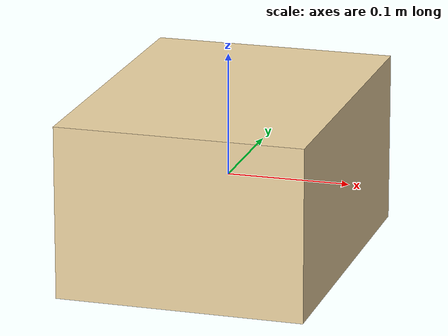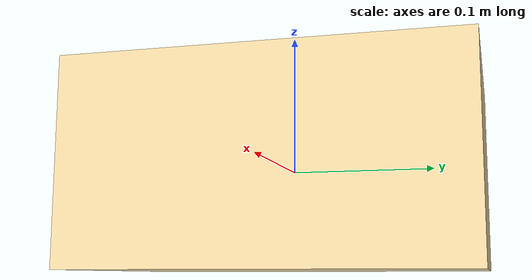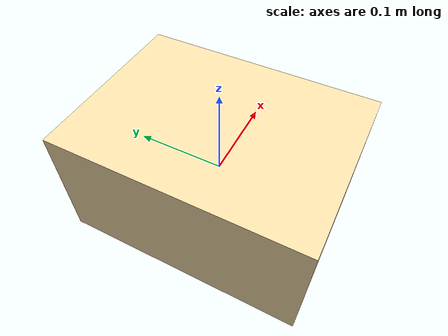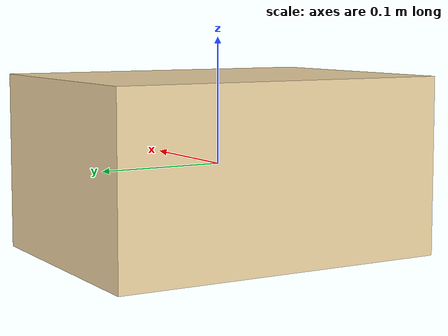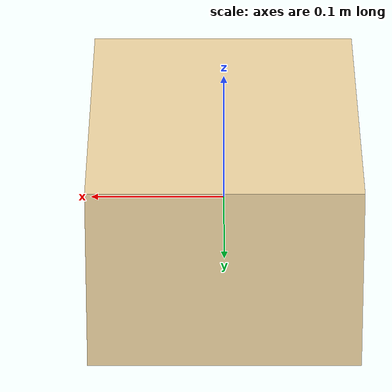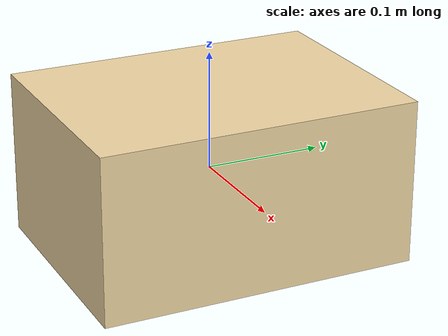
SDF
<?xml version="1.0" ?>
<sdf version="1.7">
  <model name="head_block">
    <static>false</static>
    <link name="head">
      <inertial><mass>2.0</mass><pose>0 0 0 0 0 0</pose>
        <inertia><ixx>0.006</ixx><ixy>0</ixy><ixz>0</ixz><iyy>0.006</iyy><iyz>0</iyz><izz>0.008</izz></inertia>
      </inertial>
      <visual name="vis"><geometry><box><size>0.20 0.27 0.14</size></box></geometry>
        <material><diffuse>0.95 0.85 0.65 1</diffuse></material></visual>
      <collision name="col"><geometry><box><size>0.20 0.27 0.14</size></box></geometry></collision>
    </link>
  </model>
</sdf>
